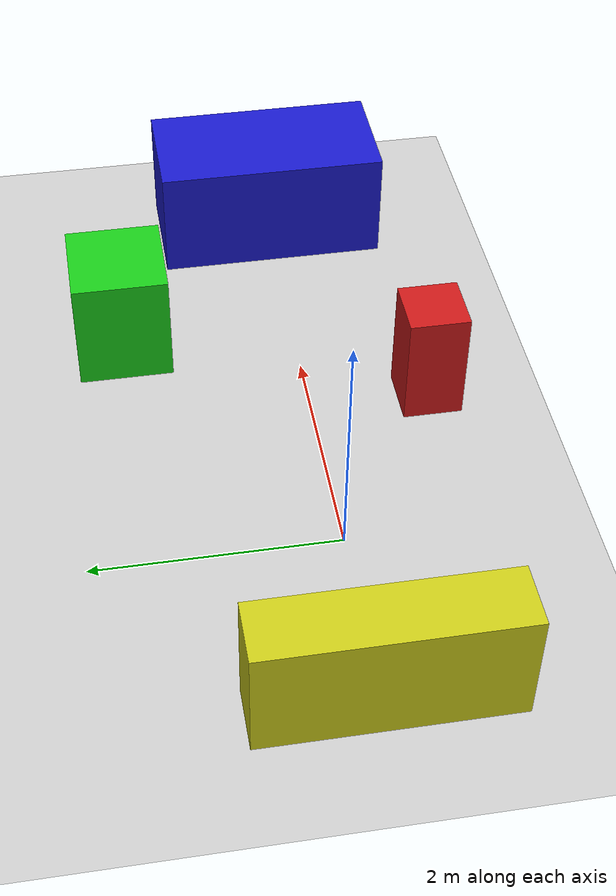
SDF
<?xml version="1.0" ?>
<sdf version="1.6">
  <world name="obstacle_world">

    <!-- Physics Settings -->
    <physics name="1ms" type="ignored">
      <max_step_size>0.001</max_step_size>
      <real_time_factor>1.0</real_time_factor>
    </physics>

    <!-- Required Gazebo Plugins -->
    <plugin filename="libignition-gazebo-physics-system.so" name="ignition::gazebo::systems::Physics"/>
    <plugin filename="libignition-gazebo-user-commands-system.so" name="ignition::gazebo::systems::UserCommands"/>
    <plugin filename="libignition-gazebo-scene-broadcaster-system.so" name="ignition::gazebo::systems::SceneBroadcaster"/>

    <!-- Needed for the gpu_lidar sensor to render/publish /scan -->
    <plugin filename="libignition-gazebo-sensors-system.so" name="ignition::gazebo::systems::Sensors">
      <render_engine>ogre2</render_engine>
    </plugin>

    <!-- Needed for the imu sensor to publish /imu -->
    <plugin filename="libignition-gazebo-imu-system.so" name="ignition::gazebo::systems::Imu"/>

    <!-- Light Source -->
    <light type="directional" name="sun">
      <cast_shadows>true</cast_shadows>
      <pose>0 0 10 0 0 0</pose>
      <diffuse>0.8 0.8 0.8 1</diffuse>
      <specular>0.2 0.2 0.2 1</specular>
      <direction>-0.5 0.1 -0.9</direction>
    </light>

    <!-- Ground Plane -->
    <model name="ground_plane">
      <static>true</static>
      <link name="link">
        <collision name="collision">
          <geometry>
            <plane>
              <normal>0 0 1</normal>
              <size>100 100</size>
            </plane>
          </geometry>
        </collision>
        <visual name="visual">
          <geometry>
            <plane>
              <normal>0 0 1</normal>
              <size>100 100</size>
            </plane>
          </geometry>
          <material>
            <ambient>0.8 0.8 0.8 1</ambient>
            <diffuse>0.8 0.8 0.8 1</diffuse>
          </material>
        </visual>
      </link>
    </model>

    <!-- Obstacle 1: Front Right -->
    <model name="box_1">
      <pose>1.5 -1.0 0.5 0 0 0</pose>
      <static>true</static>
      <link name="link">
        <collision name="collision">
          <geometry><box><size>0.5 0.5 1</size></box></geometry>
        </collision>
        <visual name="visual">
          <geometry><box><size>0.5 0.5 1</size></box></geometry>
          <material><ambient>0.8 0.1 0.1 1</ambient></material> <!-- Red -->
        </visual>
      </link>
    </model>

    <!-- Obstacle 2: Front Left -->
    <model name="box_2">
      <pose>2.5 1.5 0.5 0 0 0</pose>
      <static>true</static>
      <link name="link">
        <collision name="collision">
          <geometry><box><size>0.8 0.8 1</size></box></geometry>
        </collision>
        <visual name="visual">
          <geometry><box><size>0.8 0.8 1</size></box></geometry>
          <material><ambient>0.1 0.8 0.1 1</ambient></material> <!-- Green -->
        </visual>
      </link>
    </model>

    <!-- Obstacle 3: Directly Ahead (Far) -->
    <model name="box_3">
      <pose>4.0 0.0 0.5 0 0 0</pose>
      <static>true</static>
      <link name="link">
        <collision name="collision">
          <geometry><box><size>1.0 2.0 1</size></box></geometry>
        </collision>
        <visual name="visual">
          <geometry><box><size>1.0 2.0 1</size></box></geometry>
          <material><ambient>0.1 0.1 0.8 1</ambient></material> <!-- Blue -->
        </visual>
      </link>
    </model>

    <!-- Obstacle 4: Behind -->
    <model name="box_4">
      <pose>-1.5 0.0 0.5 0 0 0</pose>
      <static>true</static>
      <link name="link">
        <collision name="collision">
          <geometry><box><size>0.5 2.0 1</size></box></geometry>
        </collision>
        <visual name="visual">
          <geometry><box><size>0.5 2.0 1</size></box></geometry>
          <material><ambient>0.8 0.8 0.1 1</ambient></material> <!-- Yellow -->
        </visual>
      </link>
    </model>

  </world>
</sdf>
